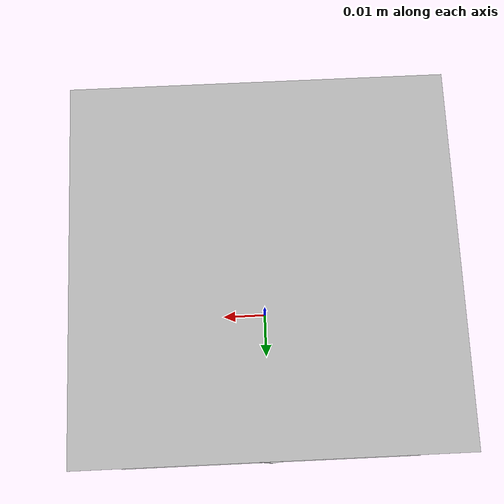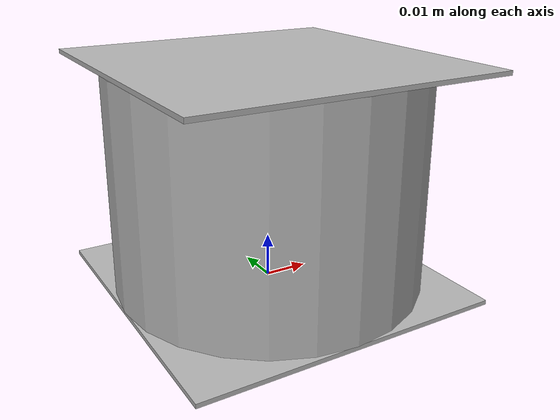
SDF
<?xml version="1.0"?>
<sdf version="1.6">
  <model name="nutbolt">
    <pose>0 0 0 0 0 0</pose>
    <static>false</static>
    <allow_auto_disable>false</allow_auto_disable>
    <self_collide>false</self_collide>

  <link name="nutbolt_link">
      <pose>0 0 0 0 0 0</pose>
      <inertial>
        <mass>0.01</mass>
        <inertia>
          <ixx>0.01</ixx>
          <iyy>0.01</iyy>
          <izz>0.01</izz>
          <ixy>0</ixy>
          <ixz>0</ixz>
          <iyz>0</iyz>
        </inertia>
      </inertial>

      <velocity_decay>
        <linear>0.05</linear>
        <angular>0.05</angular>
      </velocity_decay>
  <collision name="nutbolt_col">
        <pose>0 0 0.025 0 0 0</pose>
        <geometry>
          <cylinder>
            <radius>0.03525</radius>
            <length>0.05</length>
          </cylinder>
        </geometry>
        <surface>
          <contact>
            <ode>
              <kp>3000000</kp>
              <kd>300</kd>
              <max_vel>0.3</max_vel>
              <min_depth>0.03</min_depth>
            </ode>
          </contact>
          <friction>
            <ode>
              <mu>900.0</mu>
              <mu2>900.0</mu2>
              <slip1>0.0</slip1>
              <slip2>0.0</slip2>
            </ode>
          </friction>
          <bounce>
            <restitution_coefficient>0.2</restitution_coefficient>
          </bounce>
        </surface>
        <laser_retro>0.0</laser_retro>
        <max_contacts>5</max_contacts>
      </collision>

      <!-- Primary visual (untextured DAE mesh) -->
  <visual name="nutbolt_vis_base">
        <pose>0 0 0.025 0 0 0</pose>
        <geometry>
          <cylinder>
            <radius>0.03525</radius>
            <length>0.05</length>
          </cylinder>
        </geometry>
      </visual>

      <!-- Decal visuals to display the texture on the caps -->
  <visual name="nutbolt_vis_decal_top">
        <pose>0 0 0.0505 0 0 0</pose>
        <geometry>
          <box><size>0.07 0.07 0.001</size></box>
        </geometry>
        <material>
          <script>
            <uri>model://nutbolt/materials/scripts</uri>
            <uri>model://nutbolt/materials/textures</uri>
            <name>Task5NutBoltMaterial</name>
          </script>
        </material>
      </visual>

  <visual name="nutbolt_vis_decal_bot">
        <pose>0 0 -0.0005 0 3.14159 0</pose>
        <geometry>
          <box><size>0.07 0.07 0.001</size></box>
        </geometry>
        <material>
          <script>
            <uri>model://nutbolt/materials/scripts</uri>
            <uri>model://nutbolt/materials/textures</uri>
            <name>Task5NutBoltMaterial</name>
          </script>
        </material>
      </visual>

    </link>
  </model>
</sdf>
